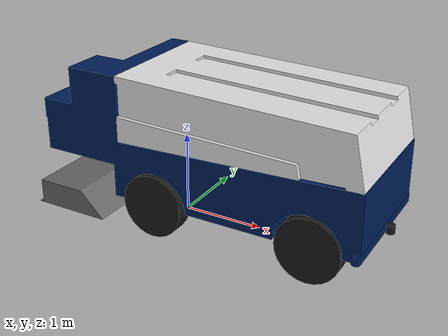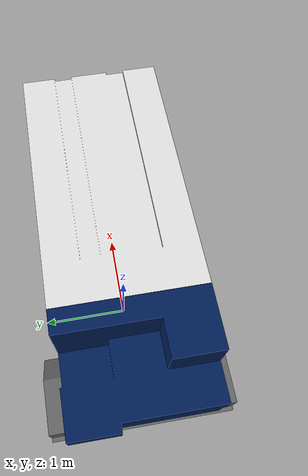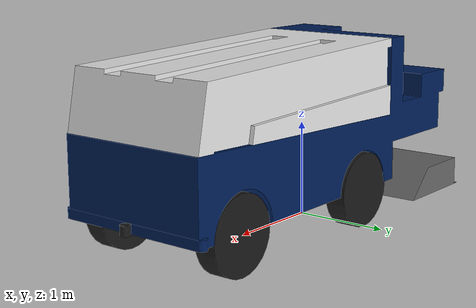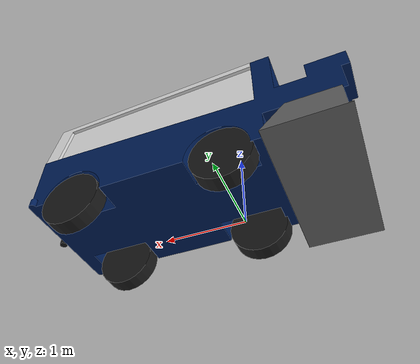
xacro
<?xml version="1.0"?>
<robot name="ice_resurfacer" xmlns:xacro="http://ros.org/wiki/xacro">

  <xacro:property name="chassis_len" value="4.04"/>
  <xacro:property name="chassis_width" value="1.585"/>
  <xacro:property name="chassis_height" value="2.0"/>
  <xacro:property name="chassis_mass" value="3143.0"/>
  <xacro:property name="wheel_radius" value="0.386"/>
  <xacro:property name="wheel_width" value="0.215"/>
  <xacro:property name="wheel_mass" value="20.0"/>

  <xacro:property name="wheel_base_x" value="0.98"/>
  <xacro:property name="wheel_sep_y" value="0.685"/>

  <xacro:property name="cond_width" value="2.13"/>
  <xacro:property name="cond_len" value="0.75"/>
  <xacro:property name="cond_height" value="0.3"/>

  <xacro:property name="ground_clearance" value="0.25"/>

  <xacro:macro name="box_inertia" params="m w h d x y z">
    <inertial>
      <origin xyz="${x} ${y} ${z}" rpy="0 0 0"/>
      <mass value="${m}"/>
      <inertia ixx="${(m/12) * (h*h + d*d)}" ixy="0.0" ixz="0.0"
               iyy="${(m/12) * (w*w + d*d)}" iyz="0.0"
               izz="${(m/12) * (w*w + h*h)}"/>
    </inertial>
  </xacro:macro>

  <xacro:macro name="cylinder_inertia" params="m r h">
    <inertial>
      <mass value="${m}"/>
      <inertia ixx="${(m/12) * (3*r*r + h*h)}" ixy="0" ixz="0"
               iyy="${(m/12) * (3*r*r + h*h)}" iyz="0"
               izz="${(m/2) * (r*r)}"/>
    </inertial>
  </xacro:macro>

  <!-- base_link is now physically located at Z=0 (Ground Level) -->
  <link name="base_link">
    <visual>
      <origin xyz="0.48 0.0 0.0" rpy="0 0 0"/>
      <geometry>
        <mesh filename="package://ice_resurfacer_description/meshes/bodywithbumber.stl" scale="1 1 1"/>
      </geometry>
      <material name="blue">
        <color rgba="0.0 0.12 0.35 1.0"/>
      </material>
    </visual>

    <collision>
      <origin xyz="0.50 0 1.55" rpy="0 0 0"/>
      <geometry>
        <box size="${chassis_len} ${chassis_width} ${chassis_height - 0.9}"/>
      </geometry>
    </collision>

    <xacro:box_inertia m="${chassis_mass}" w="${chassis_len}" h="${chassis_height}" d="${chassis_width}" x="0.98" y="0" z="1.25"/>
  </link>

   <!-- 2. The Water Tank Dummy Link -->
  <link name="water_tank_link">
    <visual>
      <origin xyz="0.48 0.0 0.0" rpy="0 0 0"/>
      <geometry>
        <mesh filename="package://ice_resurfacer_description/meshes/watertank.stl" scale="1 1 1"/>
      </geometry>
      <material name="white">
        <color rgba="0.9 0.9 0.9 1.0"/>
      </material>
    </visual>
  </link>

  <!-- 3. The Glue (Fixed Joint) -->
  <joint name="water_tank_joint" type="fixed">
    <parent link="base_link"/>
    <child link="water_tank_link"/>
    <origin xyz="0 0 0" rpy="0 0 0"/>
  </joint>

  <xacro:macro name="rear_wheel" params="prefix reflect">
    <link name="${prefix}_wheel">
      <visual>
        <geometry>
          <cylinder radius="${wheel_radius}" length="${wheel_width}"/>
        </geometry>
        <material name="black">
          <color rgba="0.1 0.1 0.1 1"/>
        </material>
      </visual>
      <collision>
        <geometry>
          <cylinder radius="${wheel_radius}" length="${wheel_width}"/>
        </geometry>
      </collision>
      <xacro:cylinder_inertia m="${wheel_mass}" r="${wheel_radius}" h="${wheel_width}"/>
    </link>

    <joint name="${prefix}_wheel_joint" type="continuous">
      <parent link="base_link"/>
      <child link="${prefix}_wheel"/>
      <origin xyz="0 ${reflect * wheel_sep_y} ${wheel_radius - (ground_clearance + chassis_height/2) + 1.25}" rpy="${-pi/2} 0 0"/>      <axis xyz="0 0 1"/>
    </joint>
  </xacro:macro>

  <xacro:rear_wheel prefix="rear_left" reflect="1"/>
  <xacro:rear_wheel prefix="rear_right" reflect="-1"/>

  <xacro:macro name="front_steering" params="prefix reflect">
    <link name="${prefix}_steering_link">
      <inertial>
        <mass value="100.0"/>
        <inertia ixx="1.0" ixy="0" ixz="0" iyy="0.01" iyz="0" izz="1.0"/>
      </inertial>
    </link>

    <joint name="${prefix}_steering_joint" type="revolute">
      <parent link="base_link"/>
      <child link="${prefix}_steering_link"/>
      <origin xyz="${wheel_base_x * 2} ${reflect * wheel_sep_y} ${wheel_radius - (ground_clearance + chassis_height/2) + 1.25}" rpy="0 0 0"/>      <axis xyz="0 0 1"/>
      <limit lower="-0.6" upper="0.6" effort="50000" velocity="1.0"/>
    </joint>

    <link name="${prefix}_wheel">
      <visual>
        <geometry>
          <cylinder radius="${wheel_radius}" length="${wheel_width}"/>
        </geometry>
        <material name="black"/>
      </visual>
      <collision>
        <geometry>
          <cylinder radius="${wheel_radius}" length="${wheel_width}"/>
        </geometry>
      </collision>
      <xacro:cylinder_inertia m="${wheel_mass}" r="${wheel_radius}" h="${wheel_width}"/>
    </link>

    <joint name="${prefix}_wheel_joint" type="continuous">
      <parent link="${prefix}_steering_link"/>
      <child link="${prefix}_wheel"/>
      <origin xyz="0 0 0" rpy="${-pi/2} 0 0"/>
      <axis xyz="0 0 1"/>
    </joint>
  </xacro:macro>

  <xacro:front_steering prefix="front_left" reflect="1"/>
  <xacro:front_steering prefix="front_right" reflect="-1"/>

  <link name="conditioner_link">
    <visual>
      <origin xyz="-0.33 0.0 -0.15" rpy="0 0 1.5708"/>
      <geometry>
        <mesh filename="package://ice_resurfacer_description/meshes/Conditioner.stl" scale="1.0 1.0 1.0"/>
      </geometry>
      <material name="grey">
        <color rgba="0.4 0.4 0.4 1.0"/>
      </material>
    </visual>

    <collision>
      <origin xyz="0 0 0" rpy="0 0 0"/>
      <geometry>
        <box size="${cond_len} ${cond_width} ${cond_height}"/>
      </geometry>
    </collision>

    <!-- No origin shift needed here, the parent joint handles it -->
    <xacro:box_inertia m="10" w="${cond_len}" h="${cond_height}" d="${cond_width}" x="0" y="0" z="0"/>
  </link>

  <joint name="conditioner_joint" type="prismatic">
    <parent link="base_link"/>
    <child link="conditioner_link"/>
    <origin xyz="${-chassis_len/2 - 0.05 + 0.98} 0 ${-(chassis_height/2) + 0.1 + 1.25}" rpy="0 0 0"/>    <axis xyz="0 0 -1"/>
    <limit lower="0.0" upper="0.5" effort="10000" velocity="0.5"/>
    <dynamics damping="50.0" friction="50.0"/>
  </joint>

  <link name="horizontal_auger_link">
    <xacro:cylinder_inertia m="15.0" r="0.12" h="2.0"/>
  </link>

  <joint name="horizontal_auger_joint" type="continuous">
    <parent link="conditioner_link"/>
    <child link="horizontal_auger_link"/>
    <origin xyz="0.2 0 -0.1" rpy="0 1.5708 0"/>
    <axis xyz="0 0 1"/>
    <dynamics damping="5.0" friction="10.0"/>
  </joint>

  <link name="vertical_auger_link">
    <xacro:cylinder_inertia m="10.0" r="0.12" h="1.5"/>
  </link>

  <joint name="vertical_auger_joint" type="continuous">
    <parent link="conditioner_link"/>
    <child link="vertical_auger_link"/>
    <origin xyz="0.3 0 0.5" rpy="0 0.3 0"/>
    <axis xyz="0 0 1"/>
    <dynamics damping="5.0" friction="10.0"/>
  </joint>

  <link name="water_valve_link">
    <inertial>
      <mass value="0.1"/>
      <inertia ixx="0.001" ixy="0" ixz="0" iyy="0.001" iyz="0" izz="0.001"/>
    </inertial>
  </link>

  <joint name="water_valve_joint" type="revolute">
    <parent link="conditioner_link"/>
    <child link="water_valve_link"/>
    <origin xyz="-0.2 0 0" rpy="0 0 0"/>
    <axis xyz="0 1 0"/>
    <limit lower="0.0" upper="1.57" effort="10.0" velocity="2.0"/>
  </joint>

  <link name="imu_link"/>
  <joint name="imu_joint" type="fixed">
    <parent link="base_link"/>
    <child link="imu_link"/>
    <origin xyz="0.98 0 0.5" rpy="0 0 0"/>
  </joint>

  <link name="laser_link">
    <visual>
      <geometry>
        <cylinder radius="0.05" length="0.1"/>
      </geometry>
      <material name="black">
        <color rgba="0.1 0.1 0.1 1"/>
      </material>
    </visual>
    <collision>
      <geometry>
        <cylinder radius="0.05" length="0.1"/>
      </geometry>
    </collision>
    <xacro:cylinder_inertia m="1.0" r="0.05" h="0.1"/>
  </link>

  <link name="camera_link">
  <!-- Visual and collision geometry for a small box -->
  </link>

  <joint name="camera_joint" type="fixed">
    <parent link="base_link"/>
    <child link="camera_link"/>
    <origin xyz="2.0 0.0 1.5" rpy="0 0 0"/> <!-- Positioned high on the front -->
  </joint>

  <joint name="laser_joint" type="fixed">
    <parent link="base_link"/>
    <child link="laser_link"/>
    <!-- Appended + 1.25 to the mathematical Z calculation -->
    <origin xyz="2.60 0 ${-(chassis_height/2) + 0.2 + 1.25}" rpy="0 0 0"/>
  </joint>

  <ros2_control name="GazeboSimSystem" type="system">
    <hardware>
      <plugin>gz_ros2_control/GazeboSimSystem</plugin>
    </hardware>

    <joint name="rear_left_wheel_joint">
      <command_interface name="velocity">
        <param name="min">-10</param>
        <param name="max">10</param>
      </command_interface>
      <state_interface name="velocity"/>
      <state_interface name="position"/>
    </joint>

    <joint name="rear_right_wheel_joint">
      <command_interface name="velocity">
        <param name="min">-10</param>
        <param name="max">10</param>
      </command_interface>
      <state_interface name="velocity"/>
      <state_interface name="position"/>
    </joint>

    <joint name="front_left_steering_joint">
      <command_interface name="position">
        <param name="min">-0.6</param> <param name="max">0.6</param>
      </command_interface>
      <state_interface name="position"/>
      <state_interface name="velocity"/>
    </joint>

    <joint name="front_right_steering_joint">
      <command_interface name="position">
        <param name="min">-0.6</param>
        <param name="max">0.6</param>
      </command_interface>
      <state_interface name="position"/>
      <state_interface name="velocity"/>
    </joint>

    <joint name="front_left_wheel_joint">
      <state_interface name="position"/>
      <state_interface name="velocity"/>
    </joint>

    <joint name="front_right_wheel_joint">
      <state_interface name="position"/>
      <state_interface name="velocity"/>
    </joint>

    <joint name="conditioner_joint">
      <command_interface name="position"/>
      <state_interface name="position">
        <param name="initial_value">0.0</param>
      </state_interface>
      <state_interface name="velocity">
        <param name="initial_value">0.0</param>
      </state_interface>
    </joint>

    <joint name="horizontal_auger_joint">
      <command_interface name="velocity">
        <param name="min">-20.0</param>
        <param name="max">20.0</param>
      </command_interface>
      <state_interface name="velocity"/>
      <state_interface name="position"/>
    </joint>

    <joint name="vertical_auger_joint">
      <command_interface name="velocity">
        <param name="min">-20.0</param>
        <param name="max">20.0</param>
      </command_interface>
      <state_interface name="velocity"/>
      <state_interface name="position"/>
    </joint>

    <joint name="water_valve_joint">
      <command_interface name="position">
        <param name="min">0.0</param>
        <param name="max">1.57</param>
      </command_interface>
      <state_interface name="position">
        <param name="initial_value">0.0</param>
      </state_interface>
    </joint>
  </ros2_control>

  <gazebo reference="base_link">
    <visual>
      <material>
        <ambient>0.0 0.12 0.35 1.0</ambient>
        <diffuse>0.0 0.12 0.35 1.0</diffuse>
        <specular>0.1 0.1 0.1 1.0</specular>
      </material>
      <visibility_flags>1</visibility_flags>
    </visual>
    <mu1>0.2</mu1> <mu2>0.2</mu2>
    <self_collide>false</self_collide>
  </gazebo>

  <gazebo reference="water_tank_link">
    <material>Gazebo/White</material>
  </gazebo>

  <gazebo reference="rear_left_wheel">
    <material>Gazebo/DarkGrey</material>
    <mu1>1.0</mu1> <mu2>1.0</mu2>
    <fdir1>1 0 0</fdir1>
    <kp>1000000.0</kp> <kd>500.0</kd>
    <minDepth>0.01</minDepth> <maxVel>0.1</maxVel>
  </gazebo>

  <gazebo reference="rear_right_wheel">
    <material>Gazebo/DarkGrey</material>
    <mu1>1.0</mu1> <mu2>1.0</mu2>
    <fdir1>1 0 0</fdir1>
    <kp>1000000.0</kp> <kd>500.0</kd>
    <minDepth>0.01</minDepth> <maxVel>0.1</maxVel>
  </gazebo>

  <gazebo reference="front_left_wheel">
    <material>Gazebo/DarkGrey</material>
    <mu1>1.0</mu1> <mu2>1.0</mu2>
    <fdir1>1 0 0</fdir1>
    <kp>1000000.0</kp> <kd>500.0</kd>
    <minDepth>0.01</minDepth> <maxVel>0.1</maxVel>
  </gazebo>

  <gazebo reference="front_right_wheel">
    <material>Gazebo/DarkGrey</material>
    <mu1>1.0</mu1> <mu2>1.0</mu2>
    <fdir1>1 0 0</fdir1>
    <kp>1000000.0</kp> <kd>500.0</kd>
    <minDepth>0.01</minDepth> <maxVel>0.1</maxVel>
  </gazebo>

  <gazebo reference="conditioner_link">
    <material>Gazebo/Grey</material>
  </gazebo>

  <gazebo>
    <plugin filename="libgz_ros2_control-system.so" name="gz_ros2_control::GazeboSimROS2ControlPlugin">
      <parameters>$(find ice_resurfacer_description)/config/controllers.yaml</parameters>
    </plugin>
  </gazebo>

  <gazebo reference="imu_link">
    <sensor name="imu_sensor" type="imu">
      <always_on>true</always_on>
      <update_rate>100</update_rate>
      <visualize>true</visualize>
      <topic>imu</topic>
      <gz_frame_id>imu_link</gz_frame_id>
    </sensor>
  </gazebo>

  <gazebo reference="camera_link">
    <sensor name="front_camera" type="camera">
      <always_on>true</always_on>
      <visualize>true</visualize>
      <update_rate>5.0</update_rate>
      <topic>/camera/image_raw</topic>
      <camera>
        <horizontal_fov>1.3962634</horizontal_fov>
        <image>
          <width>640</width>
          <height>480</height>
          <format>R8G8B8</format>
        </image>
        <clip>
          <near>0.02</near>
          <far>300</far>
        </clip>
      </camera>
    </sensor>
  </gazebo>

  <gazebo reference="laser_link">
    <sensor name="lidar" type="gpu_lidar">
      <always_on>true</always_on>
      <visualize>true</visualize>
      <update_rate>10</update_rate>
      <topic>scan</topic>
      <gz_frame_id>laser_link</gz_frame_id>

      <visibility_mask>4294967294</visibility_mask>

      <ray>
        <scan>
          <horizontal>
            <samples>360</samples>
            <resolution>1.0</resolution>
            <min_angle>-1.57079633</min_angle>
            <max_angle>1.57079633</max_angle>
          </horizontal>
        </scan>
        <range>
          <min>0.4</min>
          <max>70.0</max>
          <resolution>0.01</resolution>
        </range>
        <noise>
          <type>gaussian</type>
          <mean>0.0</mean>
          <stddev>0.01</stddev>
        </noise>
      </ray>
    </sensor>
  </gazebo>

  <gazebo>
    <plugin filename="gz-sim-odometry-publisher-system" name="gz::sim::systems::OdometryPublisher">
      <odom_frame>map</odom_frame>
      <robot_base_frame>base_link</robot_base_frame>
      <odom_publish_frequency>50</odom_publish_frequency>
    </plugin>
  </gazebo>

</robot>
